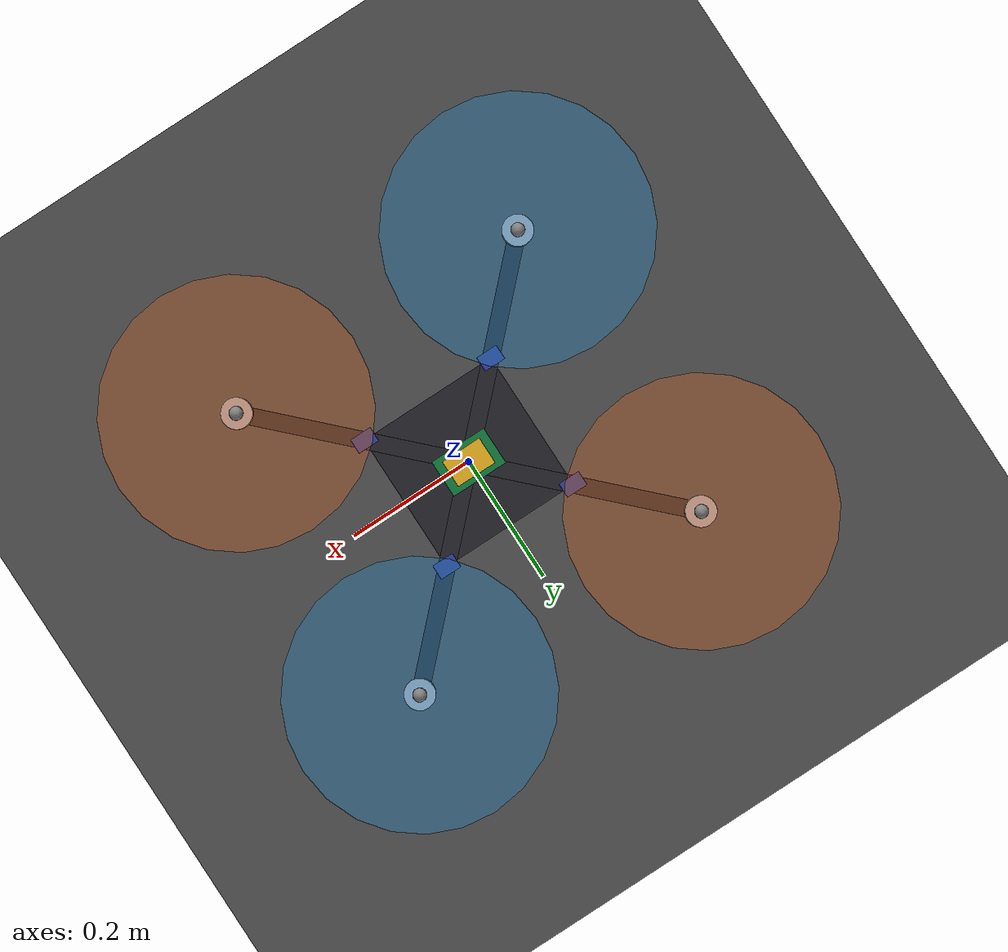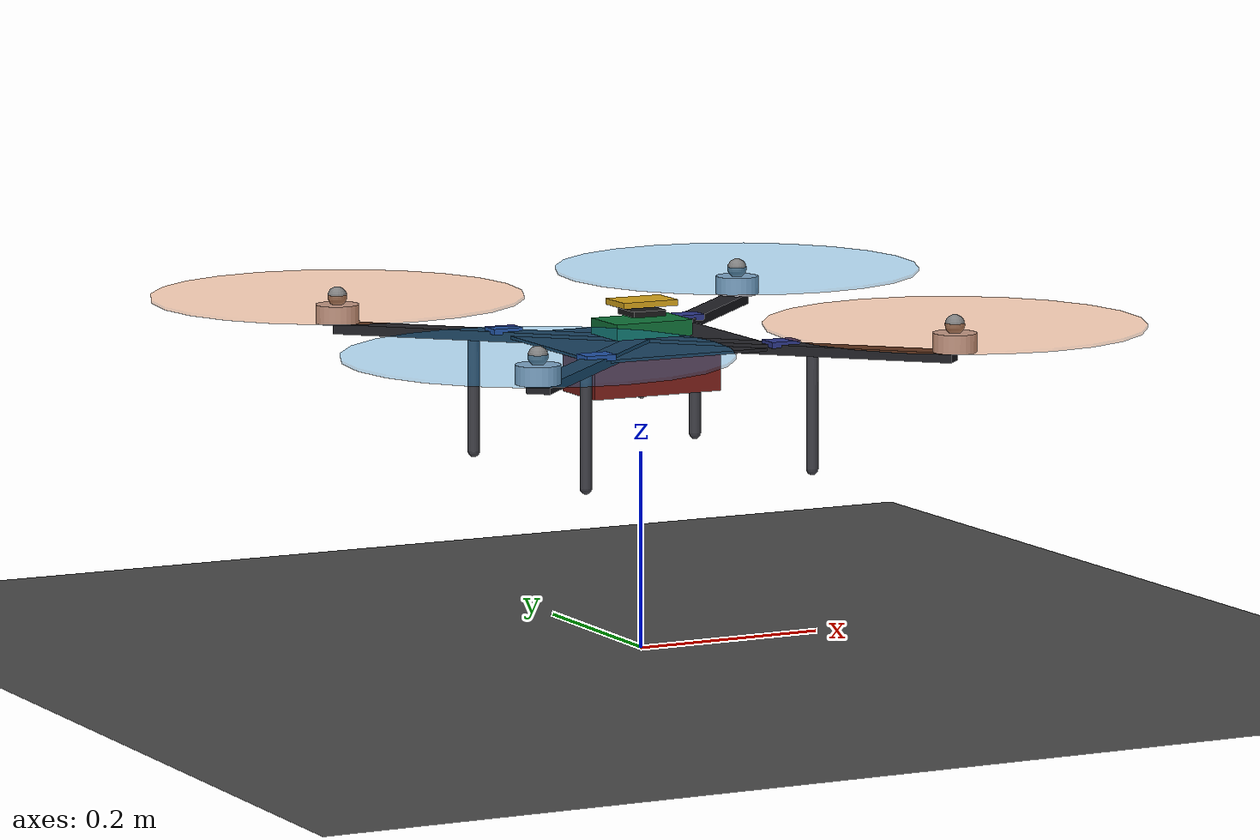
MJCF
<mujoco model="drone_rpi_endurance_15pol_p50b">
  <compiler angle="radian"/>

  <option density="1.225" viscosity="1.8e-05" integrator="implicitfast"/>

  <size nkey="1"/>

  <statistic extent="1.3"/>

  <visual>
    <global offwidth="1280" offheight="720"/>
  </visual>

  <asset>
    <texture type="2d" colorspace="auto" name="chao" builtin="checker" rgb1="0.25 0.25 0.25" rgb2="0.33 0.33 0.33" width="256" height="256"/>
    <material name="chao" texture="chao" texrepeat="10 10" reflectance="0.1"/>
    <material name="frame" rgba="0.13 0.13 0.15 1"/>
    <material name="motor" rgba="0.72 0.72 0.76 1"/>
    <material name="esc" rgba="0.18 0.22 0.55 1"/>
    <material name="bateria" rgba="0.5 0.12 0.1 1"/>
    <material name="rpi" rgba="0.06 0.45 0.22 1"/>
    <material name="fc" rgba="0.1 0.1 0.1 1"/>
    <material name="sensor" rgba="0.85 0.65 0.1 1"/>
    <material name="perna" rgba="0.25 0.25 0.28 1"/>
    <material name="helice_cw" rgba="0.1 0.55 0.85 0.35"/>
    <material name="helice_ccw" rgba="0.9 0.4 0.1 0.35"/>
  </asset>

  <worldbody>
    <geom name="chao" size="50 50 0.1" type="plane" friction="0.9" material="chao"/>
    <light name="sol" pos="0 0 6" type="directional"/>
    <body name="drone" pos="0 0 0.3">
      <joint name="livre" type="free"/>
      <geom name="placa" size="0.104 0.104 0.0015" pos="0 0 0.0120624" type="box" mass="0.109" material="frame"/>
      <geom name="braco1" size="0.1625 0.012 0.005" pos="0.114905 0.114905 0.0120624" quat="0.92388 0 0 0.382683" type="box" contype="0" conaffinity="0" mass="0.03525" material="frame"/>
      <geom name="braco2" size="0.1625 0.012 0.005" pos="-0.114905 -0.114905 0.0120624" quat="0.382683 0 0 -0.92388" type="box" contype="0" conaffinity="0" mass="0.03525" material="frame"/>
      <geom name="braco3" size="0.1625 0.012 0.005" pos="-0.114905 0.114905 0.0120624" quat="0.382683 0 0 0.92388" type="box" contype="0" conaffinity="0" mass="0.03525" material="frame"/>
      <geom name="braco4" size="0.1625 0.012 0.005" pos="0.114905 -0.114905 0.0120624" quat="0.92388 0 0 -0.382683" type="box" contype="0" conaffinity="0" mass="0.03525" material="frame"/>
      <geom name="motor1" size="0.022175 0.0095" pos="0.22981 0.22981 0.0265624" type="cylinder" mass="0.074" material="motor"/>
      <geom name="helice1" size="0.1905 0.0015" pos="0.22981 0.22981 0.0440624" type="cylinder" contype="0" conaffinity="0" group="2" mass="0" material="helice_cw"/>
      <geom name="motor2" size="0.022175 0.0095" pos="-0.22981 -0.22981 0.0265624" type="cylinder" mass="0.074" material="motor"/>
      <geom name="helice2" size="0.1905 0.0015" pos="-0.22981 -0.22981 0.0440624" type="cylinder" contype="0" conaffinity="0" group="2" mass="0" material="helice_cw"/>
      <geom name="motor3" size="0.022175 0.0095" pos="-0.22981 0.22981 0.0265624" type="cylinder" mass="0.074" material="motor"/>
      <geom name="helice3" size="0.1905 0.0015" pos="-0.22981 0.22981 0.0440624" type="cylinder" contype="0" conaffinity="0" group="2" mass="0" material="helice_ccw"/>
      <geom name="motor4" size="0.022175 0.0095" pos="0.22981 -0.22981 0.0265624" type="cylinder" mass="0.074" material="motor"/>
      <geom name="helice4" size="0.1905 0.0015" pos="0.22981 -0.22981 0.0440624" type="cylinder" contype="0" conaffinity="0" group="2" mass="0" material="helice_ccw"/>
      <geom name="esc1" size="0.016 0.011 0.003" pos="0.103414 0.103414 0.0175624" type="box" contype="0" conaffinity="0" mass="0.026" material="esc"/>
      <geom name="esc2" size="0.016 0.011 0.003" pos="-0.103414 -0.103414 0.0175624" type="box" contype="0" conaffinity="0" mass="0.026" material="esc"/>
      <geom name="esc3" size="0.016 0.011 0.003" pos="-0.103414 0.103414 0.0175624" type="box" contype="0" conaffinity="0" mass="0.026" material="esc"/>
      <geom name="esc4" size="0.016 0.011 0.003" pos="0.103414 -0.103414 0.0175624" type="box" contype="0" conaffinity="0" mass="0.026" material="esc"/>
      <geom name="el_rpi5" size="0.0425 0.028 0.008" pos="0 0 0.0275624" type="box" contype="0" conaffinity="0" mass="0.052" material="rpi"/>
      <geom name="el_fc_h7" size="0.018 0.018 0.003" pos="0 0 0.0425624" type="box" contype="0" conaffinity="0" mass="0.008" material="fc"/>
      <geom name="el_cablagem" size="0.03 0.02 0.003" pos="0 0 0.0525624" type="box" contype="0" conaffinity="0" mass="0.03" material="sensor"/>
      <geom name="bateria" size="0.071 0.035 0.022" pos="0 0 -0.0154376" type="box" mass="0.8706" material="bateria"/>
      <geom name="sensores_baixo" size="0.012 0.012 0.002" pos="0 0 -0.0394376" type="box" contype="0" conaffinity="0" mass="0.003" material="sensor"/>
      <geom name="perna1" size="0.006 0.058" pos="0.126395 0.126395 -0.0499376" type="capsule" friction="0.9" mass="0.0125" material="perna"/>
      <geom name="perna2" size="0.006 0.058" pos="-0.126395 -0.126395 -0.0499376" type="capsule" friction="0.9" mass="0.0125" material="perna"/>
      <geom name="perna3" size="0.006 0.058" pos="-0.126395 0.126395 -0.0499376" type="capsule" friction="0.9" mass="0.0125" material="perna"/>
      <geom name="perna4" size="0.006 0.058" pos="0.126395 -0.126395 -0.0499376" type="capsule" friction="0.9" mass="0.0125" material="perna"/>
      <site name="r1" size="0.01" pos="0.22981 0.22981 0.0440624"/>
      <site name="r2" size="0.01" pos="-0.22981 -0.22981 0.0440624"/>
      <site name="r3" size="0.01" pos="-0.22981 0.22981 0.0440624"/>
      <site name="r4" size="0.01" pos="0.22981 -0.22981 0.0440624"/>
      <site name="imu" size="0.006" pos="0 0 0.0255624"/>
      <site name="baixo" size="0.004" pos="0 0 -0.0414376" quat="0 1 0 0"/>
      <site name="cm" size="0.004"/>
    </body>
  </worldbody>

  <actuator>
    <general name="rotor1" site="r1" ctrllimited="false" gear="0 0 1"/>
    <general name="rotor2" site="r2" ctrllimited="false" gear="0 0 1"/>
    <general name="rotor3" site="r3" ctrllimited="false" gear="0 0 1"/>
    <general name="rotor4" site="r4" ctrllimited="false" gear="0 0 1"/>
    <general name="reacao1" site="r1" ctrllimited="false" gear="0 0 0 0 0 1"/>
    <general name="reacao2" site="r2" ctrllimited="false" gear="0 0 0 0 0 1"/>
    <general name="reacao3" site="r3" ctrllimited="false" gear="0 0 0 0 0 1"/>
    <general name="reacao4" site="r4" ctrllimited="false" gear="0 0 0 0 0 1"/>
  </actuator>

  <sensor>
    <gyro site="imu" name="giro"/>
    <accelerometer site="imu" name="acc"/>
    <rangefinder site="baixo" name="tof"/>
    <velocimeter site="baixo" name="vel_baixo"/>
    <framepos objtype="site" objname="cm" name="pos"/>
    <framequat objtype="body" objname="drone" name="quat"/>
    <framelinvel objtype="site" objname="cm" name="vel"/>
  </sensor>

  <keyframe>
    <key name="pousado"/>
  </keyframe>
</mujoco>
